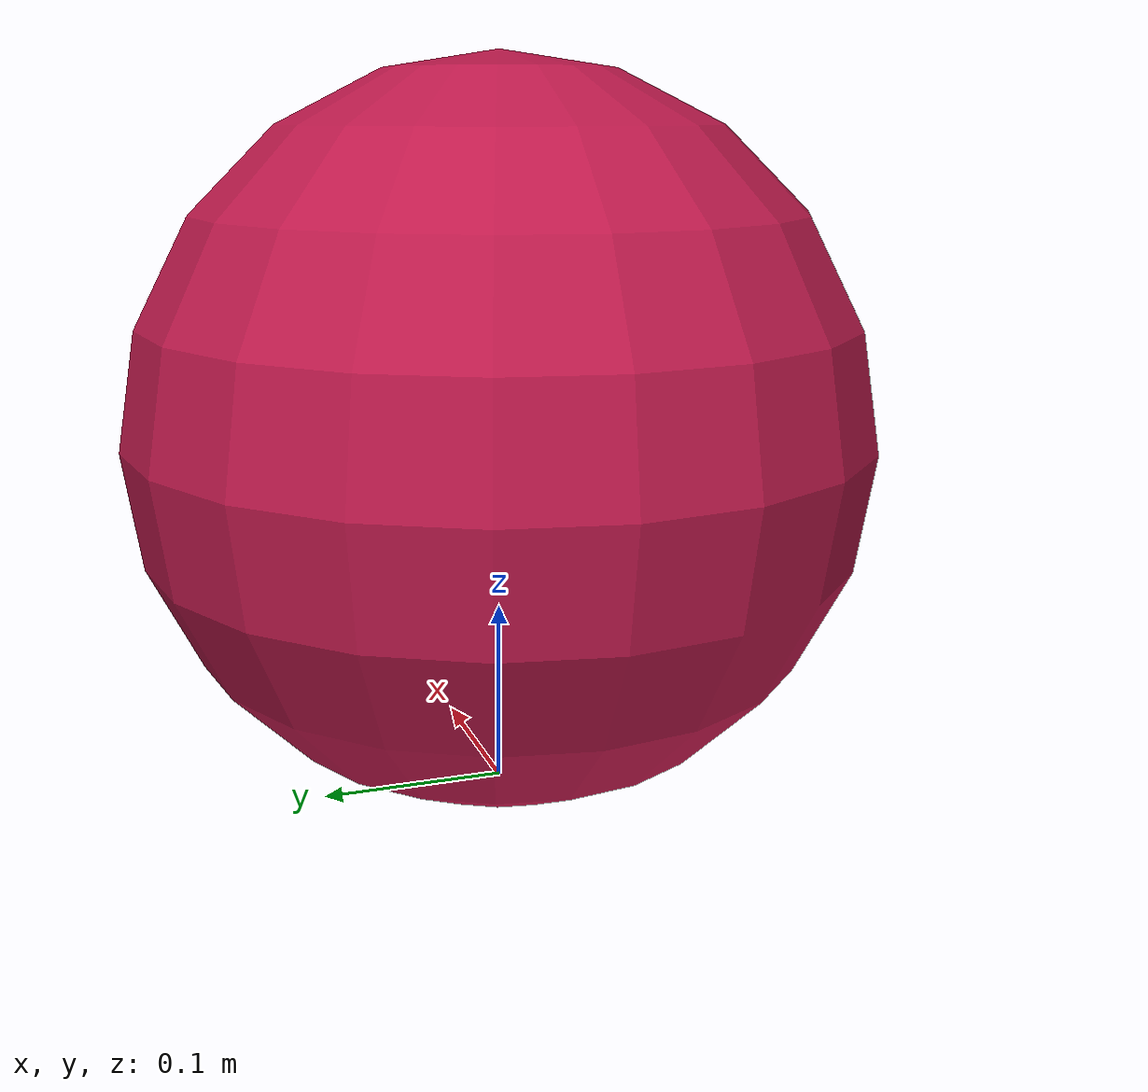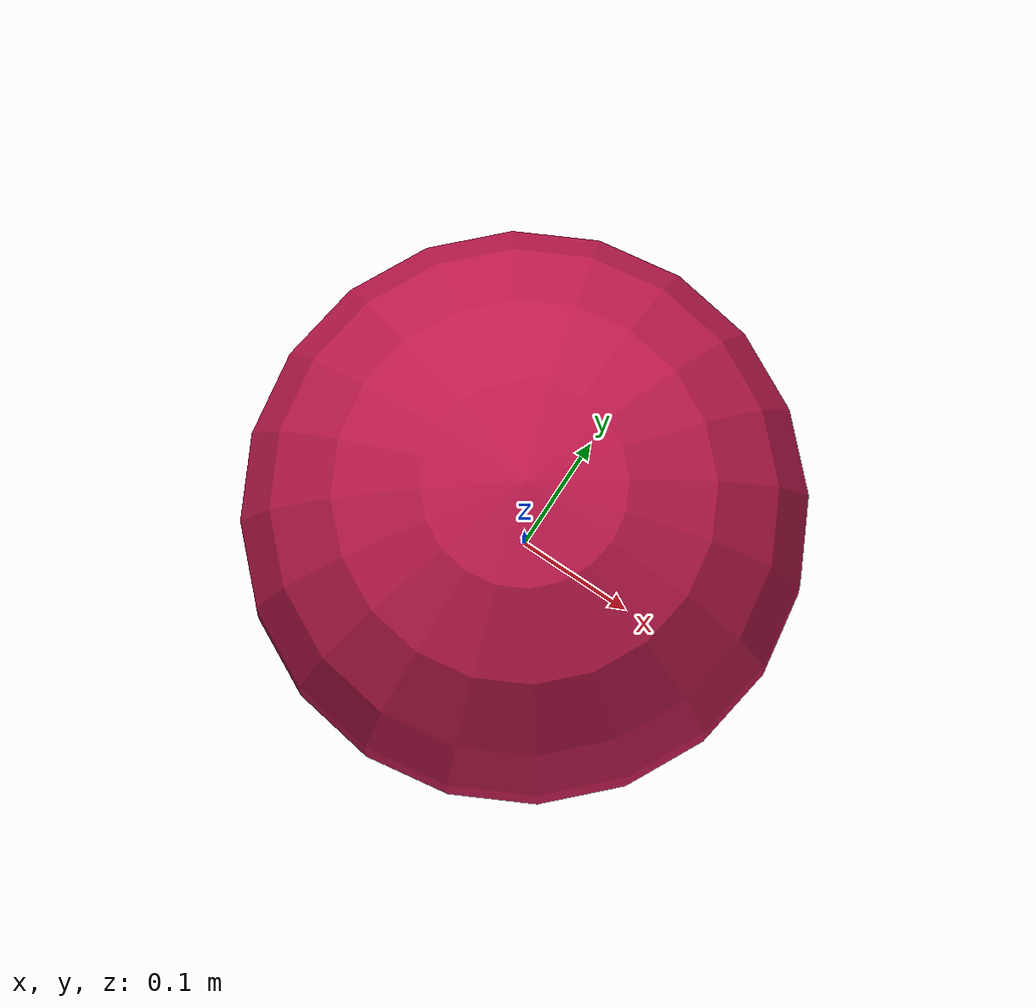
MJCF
<mujoco model="jumping_ball">
  <compiler meshdir="./" texturedir="./" />
  <asset>
    <texture name="body" type="cube" builtin="checker" rgb1="1.0 .1 .1" rgb2=".5 0.1 0.5" width="100" height="100"/>
    <material name="body" texture="body"/>
  </asset>

  <default>
    <mesh scale=".01 .01 .01"/>
    <geom contype="1" conaffinity="1" condim="4" friction=".5 .02 .02"/>
    <default class="root">
      <joint pos="0 0 0" limited="false" armature="0" damping="0" stiffness="0"/>
    </default>
  </default>

  <worldbody>
    <body pos="0 0 0.6" quat="1 0 0 -1" name="head_body">
      <body name="egocentric_camera" pos="0 0.15 0.9" zaxis="0 -0.99503719021 0.09950371902">
        <inertial pos="0 0 0" mass="1" diaginertia="1 1 1"/>
        <joint name="camera_height" type="slide" axis="0 1 0" limited="true" range="-0.5 0.5"/>
        <joint name="camera_tilt" type="hinge" axis="1 0 0" limited="true" range="-0.35 0.35"/>
        <camera name="egocentric" fovy="80"/>
      </body>
      <camera name="tracking" pos="1.5 1.5 .7" xyaxes="-1 1 0 -1 -1 4" mode="trackcom"/>
      <joint name="steer" type="hinge" axis="0 0 -1" class="root" damping="4"/>

      <inertial pos="0 0 -0.08" quat="0.05876879 0.70466036 -0.05876879 0.70466036" mass="20" diaginertia="0.14683229 0.10987294 0.10986016"/>

      <site name="torso_site" pos="0 0 0" size="0.05" rgba="1 0 0 1" group="4"/>

      <body pos="0 0 -.4" name="torso">
        <!-- wheel -->
        <joint name="kick" type="slide" damping="100" limited="true" range="0 .4" axis="0 0 -1" stiffness="0" solimplimit=".95 .99 .001" springref="-.4"/>-->
        <joint name="x" type="slide"  axis="1 0 0" damping="10"/>-->
        <joint name="y" type="slide"   axis="0 1 0" damping="10"/>-->
        <geom name="shell" type="sphere" size="0.2" material="body" mass="1"/>
      </body>
    </body>
  </worldbody>

  <sensor>
    <velocimeter site="torso_site" name="sensor_torso_vel"/>
    <gyro site="torso_site" name="sensor_torso_gyro"/>
    <accelerometer site="torso_site" name="sensor_torso_accel"/>
  </sensor>

  <actuator>
    <general name="kick" joint="kick" ctrlrange="-1 1" ctrllimited="true" gear="1000" biasprm="0" biastype="affine"/>
    <general name="x" joint="x" ctrlrange="-1 1" ctrllimited="true" gear="1000" biasprm="0" biastype="affine"/>
    <general name="y" joint="y" ctrlrange="-1 1" ctrllimited="true" gear="1000" biasprm="0" biastype="affine"/>
    <velocity name="camera_height" joint="camera_height" ctrlrange="-1 1" ctrllimited="true"/>
    <velocity name="camera_tilt" joint="camera_tilt" ctrlrange="-1 1" ctrllimited="true"/>
  </actuator>
</mujoco>
